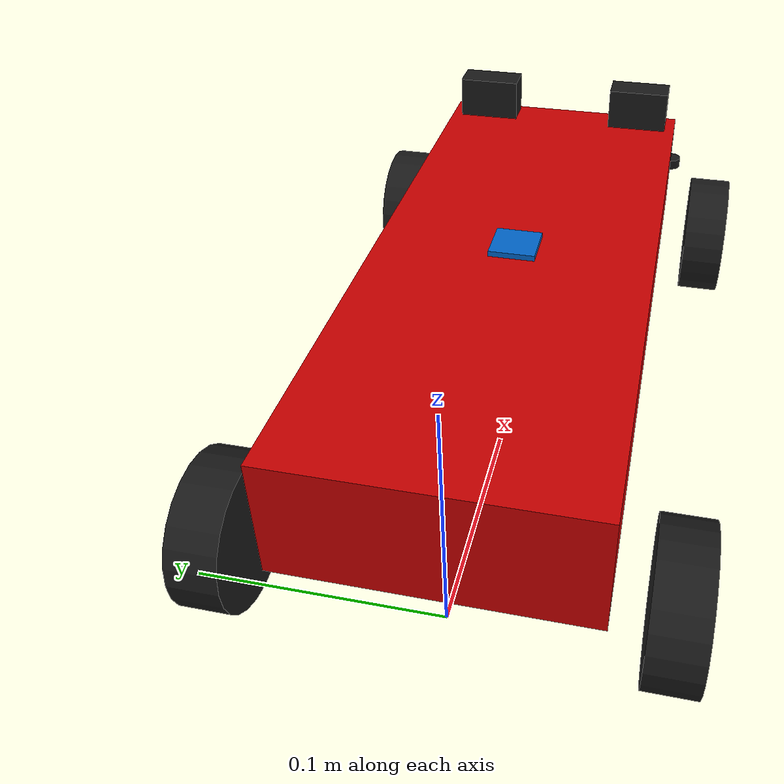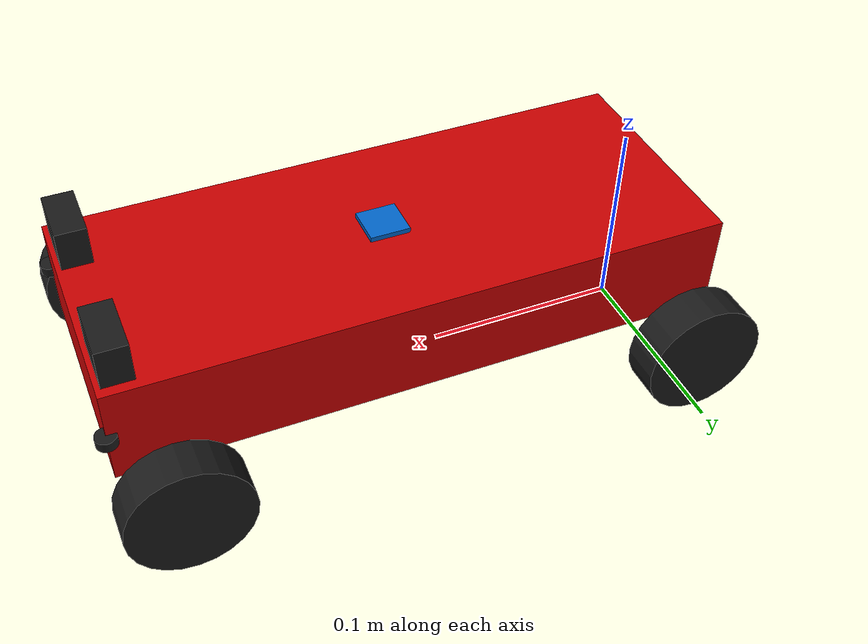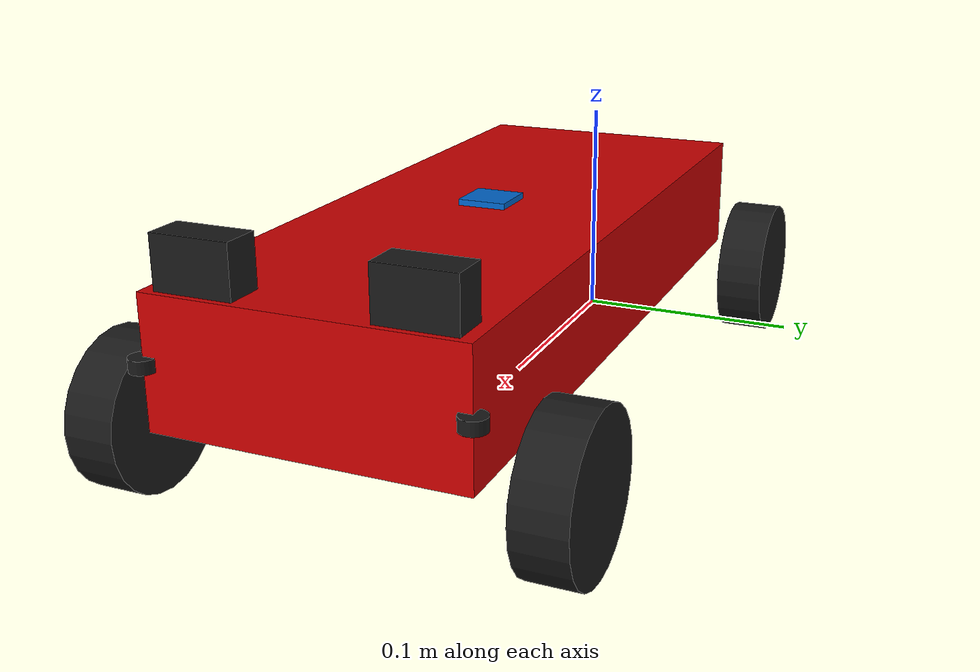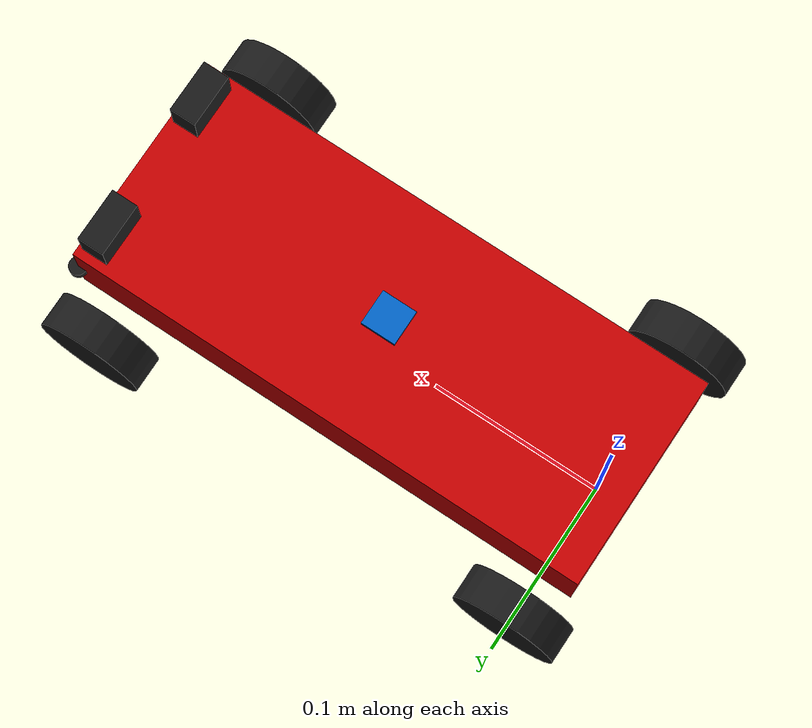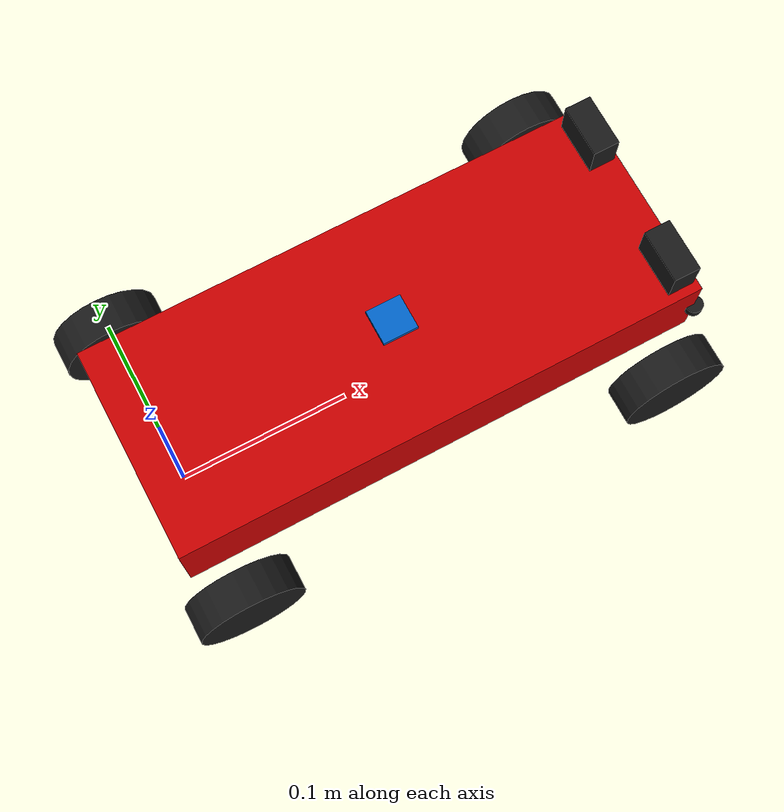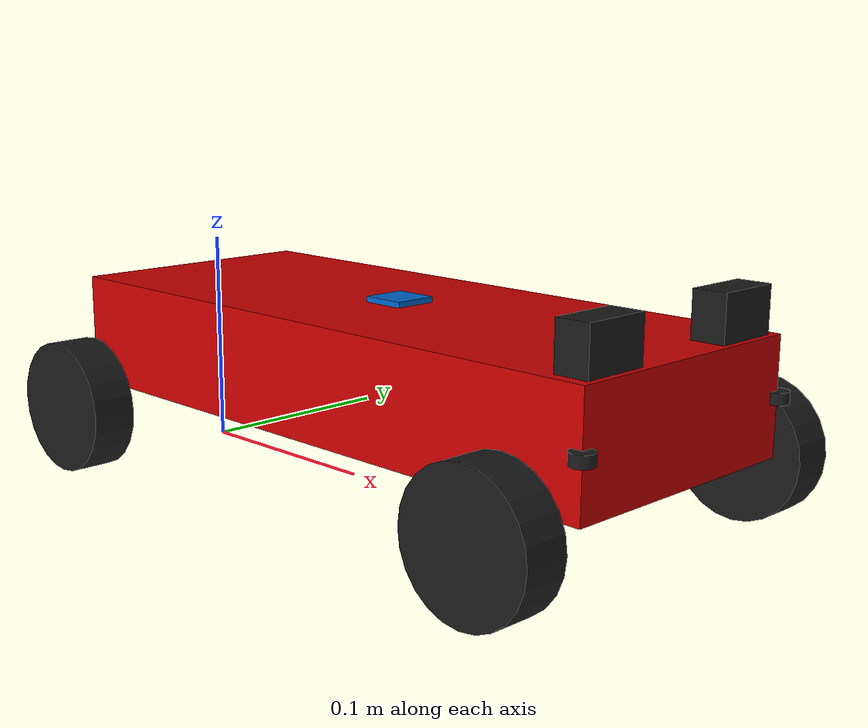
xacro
<?xml version="1.0"?>
<robot xmlns:xacro="http://www.ros.org/wiki/xacro" name="bfmc_car">

  <!-- Constants                                                              -->

  <xacro:property name="PI" value="3.14159265359"/>

  <!-- Chassis dimensions and mass 0.18 -->
  <xacro:property name="chassis_len"    value="0.30"/>
  <xacro:property name="chassis_width"  value="0.12"/>
  <xacro:property name="chassis_height" value="0.05"/>
  <xacro:property name="chassis_mass"   value="1.5"/>

  <!-- Vehicle geometry (Ackermann) -->
  <xacro:property name="wheelbase"      value="0.255"/>
  <xacro:property name="track_width"    value="0.165"/>

  <!-- Wheel dimensions -->
  <xacro:property name="wheel_radius"   value="0.03"/>
  <xacro:property name="wheel_width"    value="0.02"/>

  <!-- Chassis placement relative to rear axle (base_link) -->
  <xacro:property name="chassis_x_offset" value="0.13"/>
  <xacro:property name="chassis_z_offset" value="0.005"/>

  <!-- Materials                                                              -->

  <material name="red">
    <color rgba="0.8 0.0 0.0 1.0"/>
  </material>

  <material name="black">
    <color rgba="0.1 0.1 0.1 1.0"/>
  </material>

  <material name="blue">
    <color rgba="0.0 0.4 0.8 1.0"/>
  </material>

  <material name="gray">
    <color rgba="0.6 0.6 0.6 1.0"/>
  </material>

  <!-- Base and Chassis                                                       -->

  <!-- Ground-projected frame (Nav2 root) -->
  <link name="base_footprint"/>

  <!-- Rear axle center frame -->
  <link name="base_link"/>

  <!-- base_link elevated to wheel center height -->
  <joint name="base_link_joint" type="fixed">
    <parent link="base_footprint"/>
    <child link="base_link"/>
    <origin xyz="0 0 ${wheel_radius}" rpy="0 0 0"/>
  </joint>

  <!-- Physical chassis body -->
  <link name="chassis_link">
    <visual>
      <geometry>
        <box size="${chassis_len} ${chassis_width} ${chassis_height}"/>
      </geometry>
      <material name="red"/>
    </visual>

    <collision>
      <geometry>
        <box size="${chassis_len} ${chassis_width} ${chassis_height}"/>
      </geometry>
    </collision>

    <!-- Box inertia approximation -->
    <inertial>
      <mass value="${chassis_mass}"/>
      <inertia
        ixx="${chassis_mass/12.0 * (chassis_width*chassis_width + chassis_height*chassis_height)}"
        ixy="0" ixz="0"
        iyy="${chassis_mass/12.0 * (chassis_len*chassis_len + chassis_height*chassis_height)}"
        iyz="0"
        izz="${chassis_mass/12.0 * (chassis_len*chassis_len + chassis_width*chassis_width)}"/>
    </inertial>
  </link>

  <!-- Chassis offset forward from rear axle -->
  <joint name="chassis_joint" type="fixed">
    <parent link="base_link"/>
    <child link="chassis_link"/>
    <origin xyz="${chassis_x_offset} 0 ${chassis_z_offset + chassis_height/2}" rpy="0 0 0"/>
  </joint>

  <!-- IMU                                                                    -->

  <!-- IMU mounted centrally on chassis -->
  <link name="imu_link">
    <visual>
      <geometry>
        <box size="0.02 0.02 0.005"/>
      </geometry>
      <material name="blue"/>
    </visual>
  </link>

  <joint name="imu_joint" type="fixed">
    <parent link="base_link"/>
    <child link="imu_link"/>
    <origin xyz="${chassis_x_offset} 0 ${chassis_z_offset + chassis_height}" rpy="0 0 0"/>
  </joint>

  <!-- Cameras (Front Stereo Pair)                                            -->

  <!-- Camera macro: physical + optical frame -->
  <xacro:macro name="camera_sensor" params="prefix y_offset">

    <!-- Camera body -->
    <link name="camera_${prefix}">
      <visual>
        <geometry>
          <box size="0.015 0.03 0.02"/>
        </geometry>
        <material name="black"/>
      </visual>
    </link>

    <!-- Camera mounted on front of chassis -->
    <joint name="camera_${prefix}_joint" type="fixed">
      <parent link="base_link"/>
      <child link="camera_${prefix}"/>
      <origin
        xyz="${chassis_x_offset + chassis_len/2 - 0.01} ${y_offset} ${chassis_z_offset + chassis_height + 0.01}"
        rpy="0 0 0"/>
    </joint>

    <!-- Optical frame (ROS camera convention) -->
    <link name="camera_${prefix}_optical"/>
    <joint name="camera_${prefix}_optical_joint" type="fixed">
      <parent link="camera_${prefix}"/>
      <child link="camera_${prefix}_optical"/>
      <origin xyz="0 0 0" rpy="${-PI/2} 0 ${-PI/2}"/>
    </joint>

  </xacro:macro>

  <!-- Left Camera -->
  <xacro:camera_sensor prefix="left"  y_offset="0.04"/>

  <!-- Right Camera -->
  <xacro:camera_sensor prefix="right" y_offset="-0.04"/>

  <!-- TOF Sensors (Front Bumper)                                             -->

  <!-- TOF macro -->
  <xacro:macro name="tof_sensor" params="prefix y_offset yaw_angle">

    <link name="tof_${prefix}">
      <visual>
        <geometry>
          <cylinder radius="0.005" length="0.005"/>
        </geometry>
        <material name="black"/>
      </visual>
    </link>

    <!-- Mounted on front bumper -->
    <joint name="tof_${prefix}_joint" type="fixed">
      <parent link="base_link"/>
      <child link="tof_${prefix}"/>
      <origin
        xyz="${chassis_x_offset + chassis_len/2} ${y_offset} ${chassis_z_offset + chassis_height/2}"
        rpy="0 0 ${yaw_angle}"/>
    </joint>

  </xacro:macro>

  <!-- TOF Left -->
  <xacro:tof_sensor prefix="left"  y_offset="0.06" yaw_angle="0.0"/>

  <!-- TOF Right -->
  <xacro:tof_sensor prefix="right" y_offset="-0.06" yaw_angle="0.0"/>

  <!-- Rear Wheels (Driven)                                                   -->

  <!-- Rear wheel macro -->
  <xacro:macro name="rear_wheel" params="prefix y_pos">

    <link name="${prefix}_wheel">
      <visual>
        <origin rpy="${PI/2} 0 0"/>
        <geometry>
          <cylinder radius="${wheel_radius}" length="${wheel_width}"/>
        </geometry>
        <material name="black"/>
      </visual>

      <collision>
        <origin rpy="${PI/2} 0 0"/>
        <geometry>
          <cylinder radius="${wheel_radius}" length="${wheel_width}"/>
        </geometry>
      </collision>

      <!-- Small mass for wheel visualization -->
      <inertial>
        <mass value="0.1"/>
        <inertia ixx="0.0001" ixy="0" ixz="0" iyy="0.0001" iyz="0" izz="0.0001"/>
      </inertial>
    </link>

    <!-- Wheel rotation joint -->
    <joint name="${prefix}_wheel_joint" type="continuous">
      <parent link="base_link"/>
      <child link="${prefix}_wheel"/>
      <origin xyz="0 ${y_pos} 0"/>
      <axis xyz="0 1 0"/>
    </joint>

  </xacro:macro>

  <!-- Rear Left Wheel (Driven) -->
  <xacro:rear_wheel prefix="rear_left"  y_pos="${track_width/2}"/>

  <!-- Rear Right Wheel -->
  <xacro:rear_wheel prefix="rear_right" y_pos="-${track_width/2}"/>

  <!-- Front Steering and Wheels                                              -->

  <!-- Front steering macro -->
  <xacro:macro name="front_steering" params="prefix y_pos">

    <!-- Steering knuckle -->
    <link name="${prefix}_steering_link">
      <visual>
        <geometry>
          <cylinder radius="0.01" length="0.01"/>
        </geometry>
        <material name="gray"/>
      </visual>

      <!-- Small mass for steering link -->
      <inertial>
        <mass value="0.05"/>
        <inertia ixx="0.001" ixy="0" ixz="0" iyy="0.001" iyz="0" izz="0.001"/>
      </inertial>
    </link>

    <!-- Steering rotation -->
    <joint name="${prefix}_steering_joint" type="revolute">
      <parent link="base_link"/>
      <child link="${prefix}_steering_link"/>
      <origin xyz="${wheelbase} ${y_pos} 0"/>
      <axis xyz="0 0 1"/>
      <limit lower="-0.4" upper="0.4" effort="10.0" velocity="5.0"/>
    </joint>

    <!-- Front wheel -->
    <link name="${prefix}_wheel">
      <visual>
        <origin rpy="${PI/2} 0 0"/>
        <geometry>
          <cylinder radius="${wheel_radius}" length="${wheel_width}"/>
        </geometry>
        <material name="black"/>
      </visual>

      <collision>
        <origin rpy="${PI/2} 0 0"/>
        <geometry>
          <cylinder radius="${wheel_radius}" length="${wheel_width}"/>
        </geometry>
      </collision>

      <!-- Small mass for wheel -->
      <inertial>
        <mass value="0.1"/>
        <inertia ixx="0.0001" ixy="0" ixz="0" iyy="0.0001" iyz="0" izz="0.0001"/>
      </inertial>
    </link>

    <!-- Wheel rotation -->
    <joint name="${prefix}_wheel_joint" type="continuous">
      <parent link="${prefix}_steering_link"/>
      <child link="${prefix}_wheel"/>
      <axis xyz="0 1 0"/>
    </joint>

  </xacro:macro>

  <!-- Front Left Steering Link -->
  <xacro:front_steering prefix="front_left"  y_pos="${track_width/2}"/>

  <!-- Front Right Steering Link -->
  <xacro:front_steering prefix="front_right" y_pos="-${track_width/2}"/>

  <ros2_control name="BFMCSystem" type="system">
    <hardware>
      <plugin>gazebo_ros2_control/GazeboSystem</plugin>
    </hardware>

    <!-- Steering joints -->
    <joint name="front_left_steering_joint">
      <command_interface name="position"/>
      <state_interface name="position"/>
    </joint>

    <joint name="front_right_steering_joint">
      <command_interface name="position"/>
      <state_interface name="position"/>
    </joint>

    <!-- Rear wheels -->
    <joint name="rear_left_wheel_joint">
      <command_interface name="velocity"/>
      <state_interface name="velocity"/>
    </joint>

    <joint name="rear_right_wheel_joint">
      <command_interface name="velocity"/>
      <state_interface name="velocity"/>
    </joint>

<!--Added for testing-->

    <joint name="front_left_wheel_joint">
      <command_interface name="position"/>
      <state_interface name="position"/>
    </joint>

    <joint name="front_right_wheel_joint">
      <command_interface name="position"/>
      <state_interface name="position"/>
    </joint>

  </ros2_control>

  <!-- LEFT CAMERA -->
  <gazebo reference="camera_left">
    <sensor type="camera" name="left_camera">
      <update_rate>30</update_rate>

      <camera>
        <horizontal_fov>1.396</horizontal_fov>
        <image>
          <width>640</width>
          <height>480</height>
          <format>R8G8B8</format>
        </image>
        <clip>
          <near>0.05</near>
          <far>50</far>
        </clip>
      </camera>

      <plugin name="gazebo_ros_camera_left" filename="libgazebo_ros_camera.so">
        <ros>
          <namespace>/camera/left</namespace>
        </ros>
        <camera_name>left</camera_name>
        <image_topic_name>image_raw</image_topic_name>
        <frame_name>camera_left_optical</frame_name>
      </plugin>
    </sensor>
  </gazebo>

  <!-- RIGHT CAMERA -->
  <gazebo reference="camera_right">
    <sensor type="camera" name="right_camera">
      <update_rate>30</update_rate>

      <camera>
        <horizontal_fov>1.396</horizontal_fov>
        <image>
          <width>640</width>
          <height>480</height>
          <format>R8G8B8</format>
        </image>
        <clip>
          <near>0.05</near>
          <far>50</far>
        </clip>
      </camera>

      <plugin name="gazebo_ros_camera_right" filename="libgazebo_ros_camera.so">
        <ros>
          <namespace>/camera/right</namespace>
        </ros>
        <camera_name>right</camera_name>
        <image_topic_name>image_raw</image_topic_name>
        <frame_name>camera_right_optical</frame_name>
      </plugin>
    </sensor>
  </gazebo>

  <gazebo>
    <plugin name="gazebo_ros2_control" filename="libgazebo_ros2_control.so">
      <robot_param>robot_description</robot_param>
      <robot_param_node>robot_state_publisher</robot_param_node>
      <parameters>$(find mach_simulator)/config/ros2_control.yaml</parameters>
    </plugin>
  </gazebo>

</robot>
